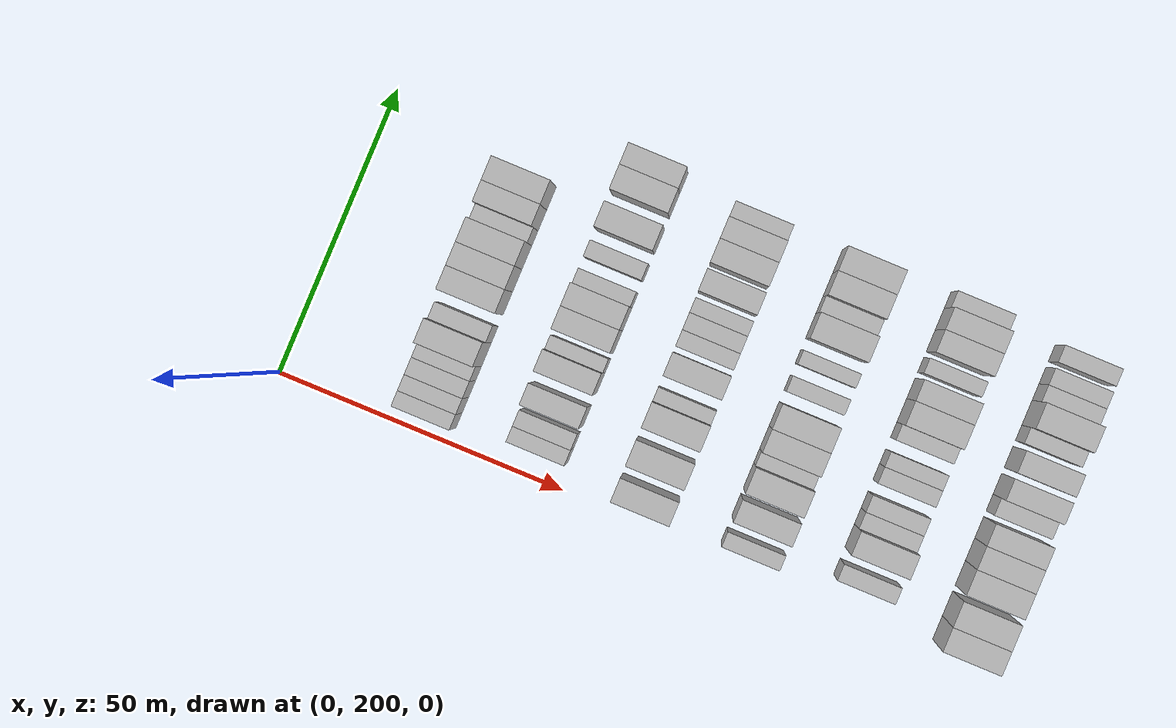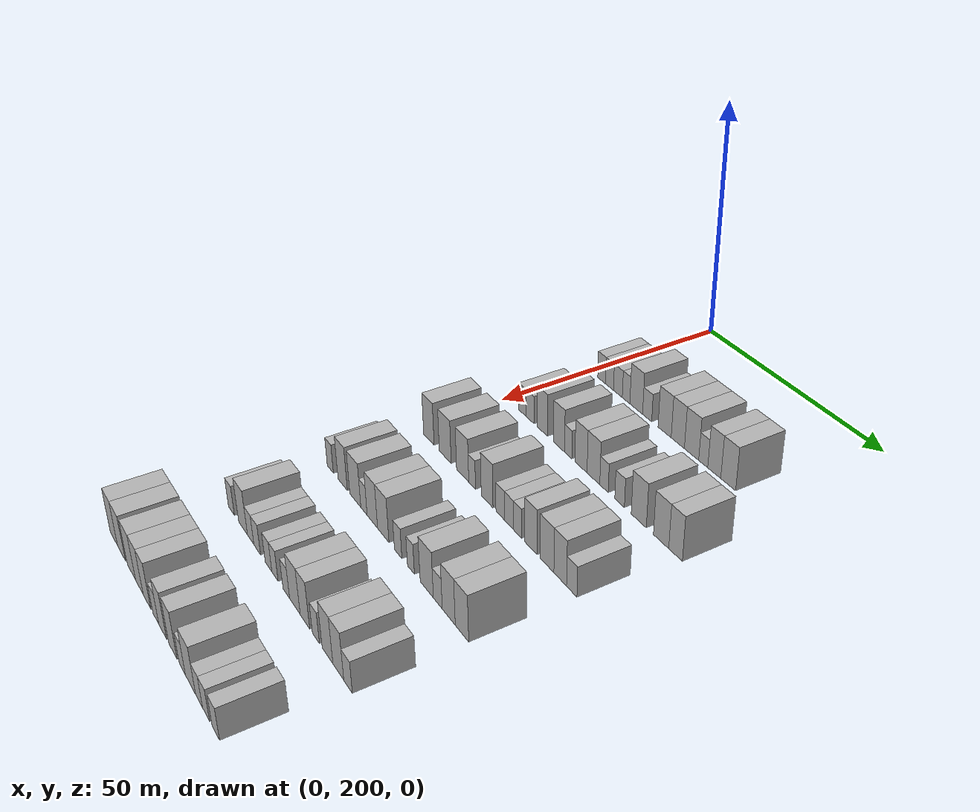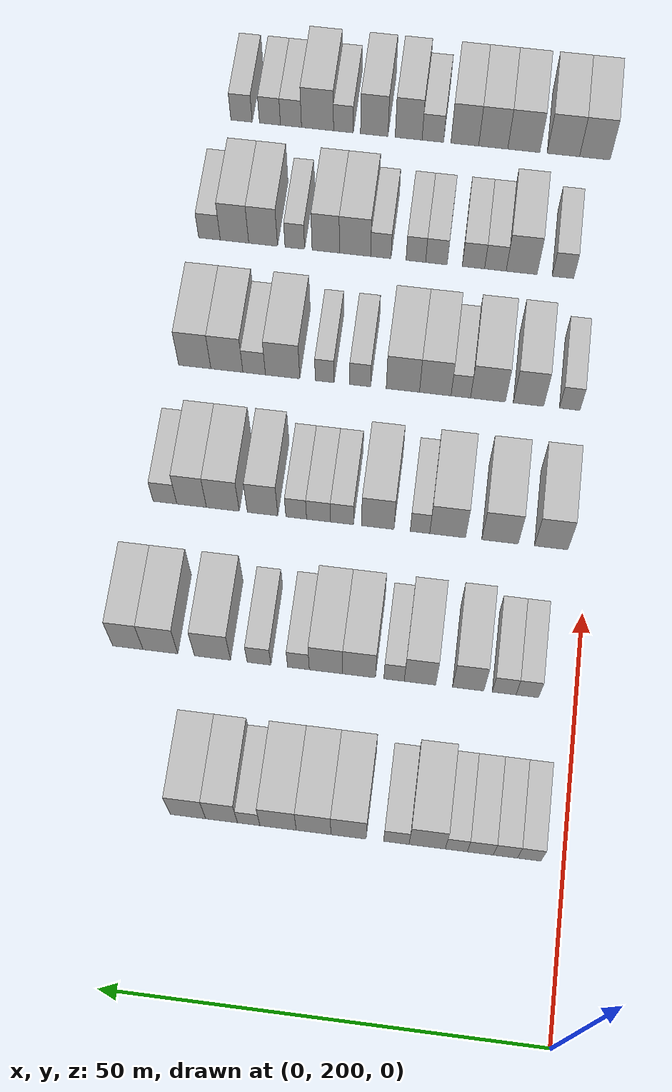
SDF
<sdf version="1.6">
 <world name="default">
  <model name="building_134">
   <static>1</static>
   <pose>25.0000 203.9932 0 0.000000 0.000000 0.000000</pose>
   <link name="link">
    <pose>0 0 3.00 0 0 0</pose>
    <collision name="collision"><geometry><box><size>10.0000 2.6758 6.0000</size></box></geometry></collision>
    <visual name="visual">
     <cast_shadows>0</cast_shadows>
     <geometry><box><size>10.0000 2.6758 6.0000</size></box></geometry>
     <material>
      <script>
       <uri>model://HANNAS_wall/materials/scripts</uri>
       <uri>model://HANNAS_wall/materials/textures</uri>
       <name>vrc/HANNAS_wall</name>
      </script>
     </material>
    </visual>
   </link>
  </model>
  <model name="building_135">
   <static>1</static>
   <pose>25.0000 206.7074 0 0.000000 0.000000 0.000000</pose>
   <link name="link">
    <pose>0 0 3.00 0 0 0</pose>
    <collision name="collision"><geometry><box><size>10.0000 2.7527 6.0000</size></box></geometry></collision>
    <visual name="visual">
     <cast_shadows>0</cast_shadows>
     <geometry><box><size>10.0000 2.7527 6.0000</size></box></geometry>
     <material>
      <script>
       <uri>model://HANNAS_wall/materials/scripts</uri>
       <uri>model://HANNAS_wall/materials/textures</uri>
       <name>vrc/HANNAS_wall</name>
      </script>
     </material>
    </visual>
   </link>
  </model>
  <model name="building_136">
   <static>1</static>
   <pose>25.0000 209.5710 0 0.000000 0.000000 0.000000</pose>
   <link name="link">
    <pose>0 0 3.00 0 0 0</pose>
    <collision name="collision"><geometry><box><size>10.0000 2.9745 6.0000</size></box></geometry></collision>
    <visual name="visual">
     <cast_shadows>0</cast_shadows>
     <geometry><box><size>10.0000 2.9745 6.0000</size></box></geometry>
     <material>
      <script>
       <uri>model://HANNAS_wall/materials/scripts</uri>
       <uri>model://HANNAS_wall/materials/textures</uri>
       <name>vrc/HANNAS_wall</name>
      </script>
     </material>
    </visual>
   </link>
  </model>
  <model name="building_137">
   <static>1</static>
   <pose>25.0000 212.3163 0 0.000000 0.000000 0.000000</pose>
   <link name="link">
    <pose>0 0 3.00 0 0 0</pose>
    <collision name="collision"><geometry><box><size>10.0000 2.5160 6.0000</size></box></geometry></collision>
    <visual name="visual">
     <cast_shadows>0</cast_shadows>
     <geometry><box><size>10.0000 2.5160 6.0000</size></box></geometry>
     <material>
      <script>
       <uri>model://HANNAS_wall/materials/scripts</uri>
       <uri>model://HANNAS_wall/materials/textures</uri>
       <name>vrc/HANNAS_wall</name>
      </script>
     </material>
    </visual>
   </link>
  </model>
  <model name="building_138">
   <static>1</static>
   <pose>25.0000 215.6465 0 0.000000 0.000000 0.000000</pose>
   <link name="link">
    <pose>0 0 4.50 0 0 0</pose>
    <collision name="collision"><geometry><box><size>10.0000 4.1445 9.0000</size></box></geometry></collision>
    <visual name="visual">
     <cast_shadows>0</cast_shadows>
     <geometry><box><size>10.0000 4.1445 9.0000</size></box></geometry>
     <material>
      <script>
       <uri>model://HANNAS_wall/materials/scripts</uri>
       <uri>model://HANNAS_wall/materials/textures</uri>
       <name>vrc/HANNAS_wall</name>
      </script>
     </material>
    </visual>
   </link>
  </model>
  <model name="building_139">
   <static>1</static>
   <pose>25.0000 219.1744 0 0.000000 0.000000 0.000000</pose>
   <link name="link">
    <pose>0 0 3.00 0 0 0</pose>
    <collision name="collision"><geometry><box><size>10.0000 2.9113 6.0000</size></box></geometry></collision>
    <visual name="visual">
     <cast_shadows>0</cast_shadows>
     <geometry><box><size>10.0000 2.9113 6.0000</size></box></geometry>
     <material>
      <script>
       <uri>model://HANNAS_wall/materials/scripts</uri>
       <uri>model://HANNAS_wall/materials/textures</uri>
       <name>vrc/HANNAS_wall</name>
      </script>
     </material>
    </visual>
   </link>
  </model>
  <model name="building_140">
   <static>1</static>
   <pose>25.0000 224.6553 0 0.000000 0.000000 0.000000</pose>
   <link name="link">
    <pose>0 0 4.50 0 0 0</pose>
    <collision name="collision"><geometry><box><size>10.0000 4.0504 9.0000</size></box></geometry></collision>
    <visual name="visual">
     <cast_shadows>0</cast_shadows>
     <geometry><box><size>10.0000 4.0504 9.0000</size></box></geometry>
     <material>
      <script>
       <uri>model://HANNAS_wall/materials/scripts</uri>
       <uri>model://HANNAS_wall/materials/textures</uri>
       <name>vrc/HANNAS_wall</name>
      </script>
     </material>
    </visual>
   </link>
  </model>
  <model name="building_141">
   <static>1</static>
   <pose>25.0000 228.6712 0 0.000000 0.000000 0.000000</pose>
   <link name="link">
    <pose>0 0 4.50 0 0 0</pose>
    <collision name="collision"><geometry><box><size>10.0000 3.9813 9.0000</size></box></geometry></collision>
    <visual name="visual">
     <cast_shadows>0</cast_shadows>
     <geometry><box><size>10.0000 3.9813 9.0000</size></box></geometry>
     <material>
      <script>
       <uri>model://HANNAS_wall/materials/scripts</uri>
       <uri>model://HANNAS_wall/materials/textures</uri>
       <name>vrc/HANNAS_wall</name>
      </script>
     </material>
    </visual>
   </link>
  </model>
  <model name="building_142">
   <static>1</static>
   <pose>25.0000 232.7609 0 0.000000 0.000000 0.000000</pose>
   <link name="link">
    <pose>0 0 4.50 0 0 0</pose>
    <collision name="collision"><geometry><box><size>10.0000 4.1981 9.0000</size></box></geometry></collision>
    <visual name="visual">
     <cast_shadows>0</cast_shadows>
     <geometry><box><size>10.0000 4.1981 9.0000</size></box></geometry>
     <material>
      <script>
       <uri>model://HANNAS_wall/materials/scripts</uri>
       <uri>model://HANNAS_wall/materials/textures</uri>
       <name>vrc/HANNAS_wall</name>
      </script>
     </material>
    </visual>
   </link>
  </model>
  <model name="building_143">
   <static>1</static>
   <pose>25.0000 236.1586 0 0.000000 0.000000 0.000000</pose>
   <link name="link">
    <pose>0 0 3.00 0 0 0</pose>
    <collision name="collision"><geometry><box><size>10.0000 2.5973 6.0000</size></box></geometry></collision>
    <visual name="visual">
     <cast_shadows>0</cast_shadows>
     <geometry><box><size>10.0000 2.5973 6.0000</size></box></geometry>
     <material>
      <script>
       <uri>model://HANNAS_wall/materials/scripts</uri>
       <uri>model://HANNAS_wall/materials/textures</uri>
       <name>vrc/HANNAS_wall</name>
      </script>
     </material>
    </visual>
   </link>
  </model>
  <model name="building_144">
   <static>1</static>
   <pose>25.0000 239.2907 0 0.000000 0.000000 0.000000</pose>
   <link name="link">
    <pose>0 0 4.50 0 0 0</pose>
    <collision name="collision"><geometry><box><size>10.0000 3.6669 9.0000</size></box></geometry></collision>
    <visual name="visual">
     <cast_shadows>0</cast_shadows>
     <geometry><box><size>10.0000 3.6669 9.0000</size></box></geometry>
     <material>
      <script>
       <uri>model://HANNAS_wall/materials/scripts</uri>
       <uri>model://HANNAS_wall/materials/textures</uri>
       <name>vrc/HANNAS_wall</name>
      </script>
     </material>
    </visual>
   </link>
  </model>
  <model name="building_145">
   <static>1</static>
   <pose>25.0000 243.1764 0 0.000000 0.000000 0.000000</pose>
   <link name="link">
    <pose>0 0 4.50 0 0 0</pose>
    <collision name="collision"><geometry><box><size>10.0000 4.1045 9.0000</size></box></geometry></collision>
    <visual name="visual">
     <cast_shadows>0</cast_shadows>
     <geometry><box><size>10.0000 4.1045 9.0000</size></box></geometry>
     <material>
      <script>
       <uri>model://HANNAS_wall/materials/scripts</uri>
       <uri>model://HANNAS_wall/materials/textures</uri>
       <name>vrc/HANNAS_wall</name>
      </script>
     </material>
    </visual>
   </link>
  </model>
  <model name="building_305">
   <static>1</static>
   <pose>44.0000 205.7767 0 0.000000 0.000000 0.000000</pose>
   <link name="link">
    <pose>0 0 3.00 0 0 0</pose>
    <collision name="collision"><geometry><box><size>10.0000 2.6656 6.0000</size></box></geometry></collision>
    <visual name="visual">
     <cast_shadows>0</cast_shadows>
     <geometry><box><size>10.0000 2.6656 6.0000</size></box></geometry>
     <material>
      <script>
       <uri>model://HANNAS_wall/materials/scripts</uri>
       <uri>model://HANNAS_wall/materials/textures</uri>
       <name>vrc/HANNAS_wall</name>
      </script>
     </material>
    </visual>
   </link>
  </model>
  <model name="building_306">
   <static>1</static>
   <pose>44.0000 208.5176 0 0.000000 0.000000 0.000000</pose>
   <link name="link">
    <pose>0 0 3.00 0 0 0</pose>
    <collision name="collision"><geometry><box><size>10.0000 2.8162 6.0000</size></box></geometry></collision>
    <visual name="visual">
     <cast_shadows>0</cast_shadows>
     <geometry><box><size>10.0000 2.8162 6.0000</size></box></geometry>
     <material>
      <script>
       <uri>model://HANNAS_wall/materials/scripts</uri>
       <uri>model://HANNAS_wall/materials/textures</uri>
       <name>vrc/HANNAS_wall</name>
      </script>
     </material>
    </visual>
   </link>
  </model>
  <model name="building_307">
   <static>1</static>
   <pose>44.0000 212.7822 0 0.000000 0.000000 0.000000</pose>
   <link name="link">
    <pose>0 0 4.50 0 0 0</pose>
    <collision name="collision"><geometry><box><size>10.0000 3.7130 9.0000</size></box></geometry></collision>
    <visual name="visual">
     <cast_shadows>0</cast_shadows>
     <geometry><box><size>10.0000 3.7130 9.0000</size></box></geometry>
     <material>
      <script>
       <uri>model://HANNAS_wall/materials/scripts</uri>
       <uri>model://HANNAS_wall/materials/textures</uri>
       <name>vrc/HANNAS_wall</name>
      </script>
     </material>
    </visual>
   </link>
  </model>
  <model name="building_308">
   <static>1</static>
   <pose>44.0000 218.5123 0 0.000000 0.000000 0.000000</pose>
   <link name="link">
    <pose>0 0 4.50 0 0 0</pose>
    <collision name="collision"><geometry><box><size>10.0000 3.7473 9.0000</size></box></geometry></collision>
    <visual name="visual">
     <cast_shadows>0</cast_shadows>
     <geometry><box><size>10.0000 3.7473 9.0000</size></box></geometry>
     <material>
      <script>
       <uri>model://HANNAS_wall/materials/scripts</uri>
       <uri>model://HANNAS_wall/materials/textures</uri>
       <name>vrc/HANNAS_wall</name>
      </script>
     </material>
    </visual>
   </link>
  </model>
  <model name="building_309">
   <static>1</static>
   <pose>44.0000 221.5993 0 0.000000 0.000000 0.000000</pose>
   <link name="link">
    <pose>0 0 3.00 0 0 0</pose>
    <collision name="collision"><geometry><box><size>10.0000 2.4266 6.0000</size></box></geometry></collision>
    <visual name="visual">
     <cast_shadows>0</cast_shadows>
     <geometry><box><size>10.0000 2.4266 6.0000</size></box></geometry>
     <material>
      <script>
       <uri>model://HANNAS_wall/materials/scripts</uri>
       <uri>model://HANNAS_wall/materials/textures</uri>
       <name>vrc/HANNAS_wall</name>
      </script>
     </material>
    </visual>
   </link>
  </model>
  <model name="building_310">
   <static>1</static>
   <pose>44.0000 225.7663 0 0.000000 0.000000 0.000000</pose>
   <link name="link">
    <pose>0 0 4.50 0 0 0</pose>
    <collision name="collision"><geometry><box><size>10.0000 3.9075 9.0000</size></box></geometry></collision>
    <visual name="visual">
     <cast_shadows>0</cast_shadows>
     <geometry><box><size>10.0000 3.9075 9.0000</size></box></geometry>
     <material>
      <script>
       <uri>model://HANNAS_wall/materials/scripts</uri>
       <uri>model://HANNAS_wall/materials/textures</uri>
       <name>vrc/HANNAS_wall</name>
      </script>
     </material>
    </visual>
   </link>
  </model>
  <model name="building_311">
   <static>1</static>
   <pose>44.0000 229.7181 0 0.000000 0.000000 0.000000</pose>
   <link name="link">
    <pose>0 0 4.50 0 0 0</pose>
    <collision name="collision"><geometry><box><size>10.0000 3.9959 9.0000</size></box></geometry></collision>
    <visual name="visual">
     <cast_shadows>0</cast_shadows>
     <geometry><box><size>10.0000 3.9959 9.0000</size></box></geometry>
     <material>
      <script>
       <uri>model://HANNAS_wall/materials/scripts</uri>
       <uri>model://HANNAS_wall/materials/textures</uri>
       <name>vrc/HANNAS_wall</name>
      </script>
     </material>
    </visual>
   </link>
  </model>
  <model name="building_312">
   <static>1</static>
   <pose>44.0000 233.0154 0 0.000000 0.000000 0.000000</pose>
   <link name="link">
    <pose>0 0 3.00 0 0 0</pose>
    <collision name="collision"><geometry><box><size>10.0000 2.5988 6.0000</size></box></geometry></collision>
    <visual name="visual">
     <cast_shadows>0</cast_shadows>
     <geometry><box><size>10.0000 2.5988 6.0000</size></box></geometry>
     <material>
      <script>
       <uri>model://HANNAS_wall/materials/scripts</uri>
       <uri>model://HANNAS_wall/materials/textures</uri>
       <name>vrc/HANNAS_wall</name>
      </script>
     </material>
    </visual>
   </link>
  </model>
  <model name="building_313">
   <static>1</static>
   <pose>44.0000 237.7409 0 0.000000 0.000000 0.000000</pose>
   <link name="link">
    <pose>0 0 3.00 0 0 0</pose>
    <collision name="collision"><geometry><box><size>10.0000 2.8521 6.0000</size></box></geometry></collision>
    <visual name="visual">
     <cast_shadows>0</cast_shadows>
     <geometry><box><size>10.0000 2.8521 6.0000</size></box></geometry>
     <material>
      <script>
       <uri>model://HANNAS_wall/materials/scripts</uri>
       <uri>model://HANNAS_wall/materials/textures</uri>
       <name>vrc/HANNAS_wall</name>
      </script>
     </material>
    </visual>
   </link>
  </model>
  <model name="building_314">
   <static>1</static>
   <pose>44.0000 243.3391 0 0.000000 0.000000 0.000000</pose>
   <link name="link">
    <pose>0 0 4.50 0 0 0</pose>
    <collision name="collision"><geometry><box><size>10.0000 4.3443 9.0000</size></box></geometry></collision>
    <visual name="visual">
     <cast_shadows>0</cast_shadows>
     <geometry><box><size>10.0000 4.3443 9.0000</size></box></geometry>
     <material>
      <script>
       <uri>model://HANNAS_wall/materials/scripts</uri>
       <uri>model://HANNAS_wall/materials/textures</uri>
       <name>vrc/HANNAS_wall</name>
      </script>
     </material>
    </visual>
   </link>
  </model>
  <model name="building_315">
   <static>1</static>
   <pose>44.0000 249.6149 0 0.000000 0.000000 0.000000</pose>
   <link name="link">
    <pose>0 0 4.50 0 0 0</pose>
    <collision name="collision"><geometry><box><size>10.0000 4.2073 9.0000</size></box></geometry></collision>
    <visual name="visual">
     <cast_shadows>0</cast_shadows>
     <geometry><box><size>10.0000 4.2073 9.0000</size></box></geometry>
     <material>
      <script>
       <uri>model://HANNAS_wall/materials/scripts</uri>
       <uri>model://HANNAS_wall/materials/textures</uri>
       <name>vrc/HANNAS_wall</name>
      </script>
     </material>
    </visual>
   </link>
  </model>
  <model name="building_316">
   <static>1</static>
   <pose>44.0000 253.5548 0 0.000000 0.000000 0.000000</pose>
   <link name="link">
    <pose>0 0 4.50 0 0 0</pose>
    <collision name="collision"><geometry><box><size>10.0000 3.6726 9.0000</size></box></geometry></collision>
    <visual name="visual">
     <cast_shadows>0</cast_shadows>
     <geometry><box><size>10.0000 3.6726 9.0000</size></box></geometry>
     <material>
      <script>
       <uri>model://HANNAS_wall/materials/scripts</uri>
       <uri>model://HANNAS_wall/materials/textures</uri>
       <name>vrc/HANNAS_wall</name>
      </script>
     </material>
    </visual>
   </link>
  </model>
  <model name="building_479">
   <static>1</static>
   <pose>63.0000 204.4105 0 0.000000 0.000000 0.000000</pose>
   <link name="link">
    <pose>0 0 4.50 0 0 0</pose>
    <collision name="collision"><geometry><box><size>10.0000 4.0880 9.0000</size></box></geometry></collision>
    <visual name="visual">
     <cast_shadows>0</cast_shadows>
     <geometry><box><size>10.0000 4.0880 9.0000</size></box></geometry>
     <material>
      <script>
       <uri>model://HANNAS_wall/materials/scripts</uri>
       <uri>model://HANNAS_wall/materials/textures</uri>
       <name>vrc/HANNAS_wall</name>
      </script>
     </material>
    </visual>
   </link>
  </model>
  <model name="building_480">
   <static>1</static>
   <pose>63.0000 210.6955 0 0.000000 0.000000 0.000000</pose>
   <link name="link">
    <pose>0 0 4.50 0 0 0</pose>
    <collision name="collision"><geometry><box><size>10.0000 4.4819 9.0000</size></box></geometry></collision>
    <visual name="visual">
     <cast_shadows>0</cast_shadows>
     <geometry><box><size>10.0000 4.4819 9.0000</size></box></geometry>
     <material>
      <script>
       <uri>model://HANNAS_wall/materials/scripts</uri>
       <uri>model://HANNAS_wall/materials/textures</uri>
       <name>vrc/HANNAS_wall</name>
      </script>
     </material>
    </visual>
   </link>
  </model>
  <model name="building_481">
   <static>1</static>
   <pose>63.0000 217.1444 0 0.000000 0.000000 0.000000</pose>
   <link name="link">
    <pose>0 0 4.50 0 0 0</pose>
    <collision name="collision"><geometry><box><size>10.0000 4.4159 9.0000</size></box></geometry></collision>
    <visual name="visual">
     <cast_shadows>0</cast_shadows>
     <geometry><box><size>10.0000 4.4159 9.0000</size></box></geometry>
     <material>
      <script>
       <uri>model://HANNAS_wall/materials/scripts</uri>
       <uri>model://HANNAS_wall/materials/textures</uri>
       <name>vrc/HANNAS_wall</name>
      </script>
     </material>
    </visual>
   </link>
  </model>
  <model name="building_482">
   <static>1</static>
   <pose>63.0000 220.5580 0 0.000000 0.000000 0.000000</pose>
   <link name="link">
    <pose>0 0 3.00 0 0 0</pose>
    <collision name="collision"><geometry><box><size>10.0000 2.4114 6.0000</size></box></geometry></collision>
    <visual name="visual">
     <cast_shadows>0</cast_shadows>
     <geometry><box><size>10.0000 2.4114 6.0000</size></box></geometry>
     <material>
      <script>
       <uri>model://HANNAS_wall/materials/scripts</uri>
       <uri>model://HANNAS_wall/materials/textures</uri>
       <name>vrc/HANNAS_wall</name>
      </script>
     </material>
    </visual>
   </link>
  </model>
  <model name="building_483">
   <static>1</static>
   <pose>63.0000 225.7758 0 0.000000 0.000000 0.000000</pose>
   <link name="link">
    <pose>0 0 4.50 0 0 0</pose>
    <collision name="collision"><geometry><box><size>10.0000 4.0241 9.0000</size></box></geometry></collision>
    <visual name="visual">
     <cast_shadows>0</cast_shadows>
     <geometry><box><size>10.0000 4.0241 9.0000</size></box></geometry>
     <material>
      <script>
       <uri>model://HANNAS_wall/materials/scripts</uri>
       <uri>model://HANNAS_wall/materials/textures</uri>
       <name>vrc/HANNAS_wall</name>
      </script>
     </material>
    </visual>
   </link>
  </model>
  <model name="building_484">
   <static>1</static>
   <pose>63.0000 230.2098 0 0.000000 0.000000 0.000000</pose>
   <link name="link">
    <pose>0 0 3.00 0 0 0</pose>
    <collision name="collision"><geometry><box><size>10.0000 2.8437 6.0000</size></box></geometry></collision>
    <visual name="visual">
     <cast_shadows>0</cast_shadows>
     <geometry><box><size>10.0000 2.8437 6.0000</size></box></geometry>
     <material>
      <script>
       <uri>model://HANNAS_wall/materials/scripts</uri>
       <uri>model://HANNAS_wall/materials/textures</uri>
       <name>vrc/HANNAS_wall</name>
      </script>
     </material>
    </visual>
   </link>
  </model>
  <model name="building_485">
   <static>1</static>
   <pose>63.0000 233.1184 0 0.000000 0.000000 0.000000</pose>
   <link name="link">
    <pose>0 0 3.00 0 0 0</pose>
    <collision name="collision"><geometry><box><size>10.0000 2.9736 6.0000</size></box></geometry></collision>
    <visual name="visual">
     <cast_shadows>0</cast_shadows>
     <geometry><box><size>10.0000 2.9736 6.0000</size></box></geometry>
     <material>
      <script>
       <uri>model://HANNAS_wall/materials/scripts</uri>
       <uri>model://HANNAS_wall/materials/textures</uri>
       <name>vrc/HANNAS_wall</name>
      </script>
     </material>
    </visual>
   </link>
  </model>
  <model name="building_486">
   <static>1</static>
   <pose>63.0000 235.8900 0 0.000000 0.000000 0.000000</pose>
   <link name="link">
    <pose>0 0 3.00 0 0 0</pose>
    <collision name="collision"><geometry><box><size>10.0000 2.5695 6.0000</size></box></geometry></collision>
    <visual name="visual">
     <cast_shadows>0</cast_shadows>
     <geometry><box><size>10.0000 2.5695 6.0000</size></box></geometry>
     <material>
      <script>
       <uri>model://HANNAS_wall/materials/scripts</uri>
       <uri>model://HANNAS_wall/materials/textures</uri>
       <name>vrc/HANNAS_wall</name>
      </script>
     </material>
    </visual>
   </link>
  </model>
  <model name="building_487">
   <static>1</static>
   <pose>63.0000 240.0777 0 0.000000 0.000000 0.000000</pose>
   <link name="link">
    <pose>0 0 4.50 0 0 0</pose>
    <collision name="collision"><geometry><box><size>10.0000 3.8059 9.0000</size></box></geometry></collision>
    <visual name="visual">
     <cast_shadows>0</cast_shadows>
     <geometry><box><size>10.0000 3.8059 9.0000</size></box></geometry>
     <material>
      <script>
       <uri>model://HANNAS_wall/materials/scripts</uri>
       <uri>model://HANNAS_wall/materials/textures</uri>
       <name>vrc/HANNAS_wall</name>
      </script>
     </material>
    </visual>
   </link>
  </model>
  <model name="building_488">
   <static>1</static>
   <pose>63.0000 245.0342 0 0.000000 0.000000 0.000000</pose>
   <link name="link">
    <pose>0 0 4.50 0 0 0</pose>
    <collision name="collision"><geometry><box><size>10.0000 4.1071 9.0000</size></box></geometry></collision>
    <visual name="visual">
     <cast_shadows>0</cast_shadows>
     <geometry><box><size>10.0000 4.1071 9.0000</size></box></geometry>
     <material>
      <script>
       <uri>model://HANNAS_wall/materials/scripts</uri>
       <uri>model://HANNAS_wall/materials/textures</uri>
       <name>vrc/HANNAS_wall</name>
      </script>
     </material>
    </visual>
   </link>
  </model>
  <model name="building_489">
   <static>1</static>
   <pose>63.0000 248.9422 0 0.000000 0.000000 0.000000</pose>
   <link name="link">
    <pose>0 0 4.50 0 0 0</pose>
    <collision name="collision"><geometry><box><size>10.0000 3.7089 9.0000</size></box></geometry></collision>
    <visual name="visual">
     <cast_shadows>0</cast_shadows>
     <geometry><box><size>10.0000 3.7089 9.0000</size></box></geometry>
     <material>
      <script>
       <uri>model://HANNAS_wall/materials/scripts</uri>
       <uri>model://HANNAS_wall/materials/textures</uri>
       <name>vrc/HANNAS_wall</name>
      </script>
     </material>
    </visual>
   </link>
  </model>
  <model name="building_490">
   <static>1</static>
   <pose>63.0000 252.2811 0 0.000000 0.000000 0.000000</pose>
   <link name="link">
    <pose>0 0 3.00 0 0 0</pose>
    <collision name="collision"><geometry><box><size>10.0000 2.9689 6.0000</size></box></geometry></collision>
    <visual name="visual">
     <cast_shadows>0</cast_shadows>
     <geometry><box><size>10.0000 2.9689 6.0000</size></box></geometry>
     <material>
      <script>
       <uri>model://HANNAS_wall/materials/scripts</uri>
       <uri>model://HANNAS_wall/materials/textures</uri>
       <name>vrc/HANNAS_wall</name>
      </script>
     </material>
    </visual>
   </link>
  </model>
  <model name="building_662">
   <static>1</static>
   <pose>82.0000 203.5092 0 0.000000 0.000000 0.000000</pose>
   <link name="link">
    <pose>0 0 3.00 0 0 0</pose>
    <collision name="collision"><geometry><box><size>10.0000 2.6144 6.0000</size></box></geometry></collision>
    <visual name="visual">
     <cast_shadows>0</cast_shadows>
     <geometry><box><size>10.0000 2.6144 6.0000</size></box></geometry>
     <material>
      <script>
       <uri>model://HANNAS_wall/materials/scripts</uri>
       <uri>model://HANNAS_wall/materials/textures</uri>
       <name>vrc/HANNAS_wall</name>
      </script>
     </material>
    </visual>
   </link>
  </model>
  <model name="building_663">
   <static>1</static>
   <pose>82.0000 208.7535 0 0.000000 0.000000 0.000000</pose>
   <link name="link">
    <pose>0 0 4.50 0 0 0</pose>
    <collision name="collision"><geometry><box><size>10.0000 3.8741 9.0000</size></box></geometry></collision>
    <visual name="visual">
     <cast_shadows>0</cast_shadows>
     <geometry><box><size>10.0000 3.8741 9.0000</size></box></geometry>
     <material>
      <script>
       <uri>model://HANNAS_wall/materials/scripts</uri>
       <uri>model://HANNAS_wall/materials/textures</uri>
       <name>vrc/HANNAS_wall</name>
      </script>
     </material>
    </visual>
   </link>
  </model>
  <model name="building_664">
   <static>1</static>
   <pose>82.0000 213.9165 0 0.000000 0.000000 0.000000</pose>
   <link name="link">
    <pose>0 0 4.50 0 0 0</pose>
    <collision name="collision"><geometry><box><size>10.0000 4.4519 9.0000</size></box></geometry></collision>
    <visual name="visual">
     <cast_shadows>0</cast_shadows>
     <geometry><box><size>10.0000 4.4519 9.0000</size></box></geometry>
     <material>
      <script>
       <uri>model://HANNAS_wall/materials/scripts</uri>
       <uri>model://HANNAS_wall/materials/textures</uri>
       <name>vrc/HANNAS_wall</name>
      </script>
     </material>
    </visual>
   </link>
  </model>
  <model name="building_665">
   <static>1</static>
   <pose>82.0000 217.3865 0 0.000000 0.000000 0.000000</pose>
   <link name="link">
    <pose>0 0 3.00 0 0 0</pose>
    <collision name="collision"><geometry><box><size>10.0000 2.4881 6.0000</size></box></geometry></collision>
    <visual name="visual">
     <cast_shadows>0</cast_shadows>
     <geometry><box><size>10.0000 2.4881 6.0000</size></box></geometry>
     <material>
      <script>
       <uri>model://HANNAS_wall/materials/scripts</uri>
       <uri>model://HANNAS_wall/materials/textures</uri>
       <name>vrc/HANNAS_wall</name>
      </script>
     </material>
    </visual>
   </link>
  </model>
  <model name="building_666">
   <static>1</static>
   <pose>82.0000 220.6441 0 0.000000 0.000000 0.000000</pose>
   <link name="link">
    <pose>0 0 4.50 0 0 0</pose>
    <collision name="collision"><geometry><box><size>10.0000 4.0270 9.0000</size></box></geometry></collision>
    <visual name="visual">
     <cast_shadows>0</cast_shadows>
     <geometry><box><size>10.0000 4.0270 9.0000</size></box></geometry>
     <material>
      <script>
       <uri>model://HANNAS_wall/materials/scripts</uri>
       <uri>model://HANNAS_wall/materials/textures</uri>
       <name>vrc/HANNAS_wall</name>
      </script>
     </material>
    </visual>
   </link>
  </model>
  <model name="building_667">
   <static>1</static>
   <pose>82.0000 224.7932 0 0.000000 0.000000 0.000000</pose>
   <link name="link">
    <pose>0 0 4.50 0 0 0</pose>
    <collision name="collision"><geometry><box><size>10.0000 4.2712 9.0000</size></box></geometry></collision>
    <visual name="visual">
     <cast_shadows>0</cast_shadows>
     <geometry><box><size>10.0000 4.2712 9.0000</size></box></geometry>
     <material>
      <script>
       <uri>model://HANNAS_wall/materials/scripts</uri>
       <uri>model://HANNAS_wall/materials/textures</uri>
       <name>vrc/HANNAS_wall</name>
      </script>
     </material>
    </visual>
   </link>
  </model>
  <model name="building_668">
   <static>1</static>
   <pose>82.0000 230.2750 0 0.000000 0.000000 0.000000</pose>
   <link name="link">
    <pose>0 0 3.00 0 0 0</pose>
    <collision name="collision"><geometry><box><size>10.0000 2.6922 6.0000</size></box></geometry></collision>
    <visual name="visual">
     <cast_shadows>0</cast_shadows>
     <geometry><box><size>10.0000 2.6922 6.0000</size></box></geometry>
     <material>
      <script>
       <uri>model://HANNAS_wall/materials/scripts</uri>
       <uri>model://HANNAS_wall/materials/textures</uri>
       <name>vrc/HANNAS_wall</name>
      </script>
     </material>
    </visual>
   </link>
  </model>
  <model name="building_669">
   <static>1</static>
   <pose>82.0000 234.8300 0 0.000000 0.000000 0.000000</pose>
   <link name="link">
    <pose>0 0 3.00 0 0 0</pose>
    <collision name="collision"><geometry><box><size>10.0000 2.4178 6.0000</size></box></geometry></collision>
    <visual name="visual">
     <cast_shadows>0</cast_shadows>
     <geometry><box><size>10.0000 2.4178 6.0000</size></box></geometry>
     <material>
      <script>
       <uri>model://HANNAS_wall/materials/scripts</uri>
       <uri>model://HANNAS_wall/materials/textures</uri>
       <name>vrc/HANNAS_wall</name>
      </script>
     </material>
    </visual>
   </link>
  </model>
  <model name="building_670">
   <static>1</static>
   <pose>82.0000 240.2549 0 0.000000 0.000000 0.000000</pose>
   <link name="link">
    <pose>0 0 4.50 0 0 0</pose>
    <collision name="collision"><geometry><box><size>10.0000 4.4321 9.0000</size></box></geometry></collision>
    <visual name="visual">
     <cast_shadows>0</cast_shadows>
     <geometry><box><size>10.0000 4.4321 9.0000</size></box></geometry>
     <material>
      <script>
       <uri>model://HANNAS_wall/materials/scripts</uri>
       <uri>model://HANNAS_wall/materials/textures</uri>
       <name>vrc/HANNAS_wall</name>
      </script>
     </material>
    </visual>
   </link>
  </model>
  <model name="building_671">
   <static>1</static>
   <pose>82.0000 243.9283 0 0.000000 0.000000 0.000000</pose>
   <link name="link">
    <pose>0 0 3.00 0 0 0</pose>
    <collision name="collision"><geometry><box><size>10.0000 2.9148 6.0000</size></box></geometry></collision>
    <visual name="visual">
     <cast_shadows>0</cast_shadows>
     <geometry><box><size>10.0000 2.9148 6.0000</size></box></geometry>
     <material>
      <script>
       <uri>model://HANNAS_wall/materials/scripts</uri>
       <uri>model://HANNAS_wall/materials/textures</uri>
       <name>vrc/HANNAS_wall</name>
      </script>
     </material>
    </visual>
   </link>
  </model>
  <model name="building_672">
   <static>1</static>
   <pose>82.0000 247.4600 0 0.000000 0.000000 0.000000</pose>
   <link name="link">
    <pose>0 0 4.50 0 0 0</pose>
    <collision name="collision"><geometry><box><size>10.0000 4.1488 9.0000</size></box></geometry></collision>
    <visual name="visual">
     <cast_shadows>0</cast_shadows>
     <geometry><box><size>10.0000 4.1488 9.0000</size></box></geometry>
     <material>
      <script>
       <uri>model://HANNAS_wall/materials/scripts</uri>
       <uri>model://HANNAS_wall/materials/textures</uri>
       <name>vrc/HANNAS_wall</name>
      </script>
     </material>
    </visual>
   </link>
  </model>
  <model name="building_673">
   <static>1</static>
   <pose>82.0000 251.6200 0 0.000000 0.000000 0.000000</pose>
   <link name="link">
    <pose>0 0 4.50 0 0 0</pose>
    <collision name="collision"><geometry><box><size>10.0000 4.1712 9.0000</size></box></geometry></collision>
    <visual name="visual">
     <cast_shadows>0</cast_shadows>
     <geometry><box><size>10.0000 4.1712 9.0000</size></box></geometry>
     <material>
      <script>
       <uri>model://HANNAS_wall/materials/scripts</uri>
       <uri>model://HANNAS_wall/materials/textures</uri>
       <name>vrc/HANNAS_wall</name>
      </script>
     </material>
    </visual>
   </link>
  </model>
  <model name="building_829">
   <static>1</static>
   <pose>101.0000 205.7674 0 0.000000 0.000000 0.000000</pose>
   <link name="link">
    <pose>0 0 3.00 0 0 0</pose>
    <collision name="collision"><geometry><box><size>10.0000 2.8294 6.0000</size></box></geometry></collision>
    <visual name="visual">
     <cast_shadows>0</cast_shadows>
     <geometry><box><size>10.0000 2.8294 6.0000</size></box></geometry>
     <material>
      <script>
       <uri>model://HANNAS_wall/materials/scripts</uri>
       <uri>model://HANNAS_wall/materials/textures</uri>
       <name>vrc/HANNAS_wall</name>
      </script>
     </material>
    </visual>
   </link>
  </model>
  <model name="building_830">
   <static>1</static>
   <pose>101.0000 211.2204 0 0.000000 0.000000 0.000000</pose>
   <link name="link">
    <pose>0 0 4.50 0 0 0</pose>
    <collision name="collision"><geometry><box><size>10.0000 4.0766 9.0000</size></box></geometry></collision>
    <visual name="visual">
     <cast_shadows>0</cast_shadows>
     <geometry><box><size>10.0000 4.0766 9.0000</size></box></geometry>
     <material>
      <script>
       <uri>model://HANNAS_wall/materials/scripts</uri>
       <uri>model://HANNAS_wall/materials/textures</uri>
       <name>vrc/HANNAS_wall</name>
      </script>
     </material>
    </visual>
   </link>
  </model>
  <model name="building_831">
   <static>1</static>
   <pose>101.0000 214.6823 0 0.000000 0.000000 0.000000</pose>
   <link name="link">
    <pose>0 0 3.00 0 0 0</pose>
    <collision name="collision"><geometry><box><size>10.0000 2.8473 6.0000</size></box></geometry></collision>
    <visual name="visual">
     <cast_shadows>0</cast_shadows>
     <geometry><box><size>10.0000 2.8473 6.0000</size></box></geometry>
     <material>
      <script>
       <uri>model://HANNAS_wall/materials/scripts</uri>
       <uri>model://HANNAS_wall/materials/textures</uri>
       <name>vrc/HANNAS_wall</name>
      </script>
     </material>
    </visual>
   </link>
  </model>
  <model name="building_832">
   <static>1</static>
   <pose>101.0000 217.5791 0 0.000000 0.000000 0.000000</pose>
   <link name="link">
    <pose>0 0 3.00 0 0 0</pose>
    <collision name="collision"><geometry><box><size>10.0000 2.9463 6.0000</size></box></geometry></collision>
    <visual name="visual">
     <cast_shadows>0</cast_shadows>
     <geometry><box><size>10.0000 2.9463 6.0000</size></box></geometry>
     <material>
      <script>
       <uri>model://HANNAS_wall/materials/scripts</uri>
       <uri>model://HANNAS_wall/materials/textures</uri>
       <name>vrc/HANNAS_wall</name>
      </script>
     </material>
    </visual>
   </link>
  </model>
  <model name="building_833">
   <static>1</static>
   <pose>101.0000 222.4733 0 0.000000 0.000000 0.000000</pose>
   <link name="link">
    <pose>0 0 3.00 0 0 0</pose>
    <collision name="collision"><geometry><box><size>10.0000 2.8419 6.0000</size></box></geometry></collision>
    <visual name="visual">
     <cast_shadows>0</cast_shadows>
     <geometry><box><size>10.0000 2.8419 6.0000</size></box></geometry>
     <material>
      <script>
       <uri>model://HANNAS_wall/materials/scripts</uri>
       <uri>model://HANNAS_wall/materials/textures</uri>
       <name>vrc/HANNAS_wall</name>
      </script>
     </material>
    </visual>
   </link>
  </model>
  <model name="building_834">
   <static>1</static>
   <pose>101.0000 225.1943 0 0.000000 0.000000 0.000000</pose>
   <link name="link">
    <pose>0 0 3.00 0 0 0</pose>
    <collision name="collision"><geometry><box><size>10.0000 2.6001 6.0000</size></box></geometry></collision>
    <visual name="visual">
     <cast_shadows>0</cast_shadows>
     <geometry><box><size>10.0000 2.6001 6.0000</size></box></geometry>
     <material>
      <script>
       <uri>model://HANNAS_wall/materials/scripts</uri>
       <uri>model://HANNAS_wall/materials/textures</uri>
       <name>vrc/HANNAS_wall</name>
      </script>
     </material>
    </visual>
   </link>
  </model>
  <model name="building_835">
   <static>1</static>
   <pose>101.0000 229.8483 0 0.000000 0.000000 0.000000</pose>
   <link name="link">
    <pose>0 0 3.00 0 0 0</pose>
    <collision name="collision"><geometry><box><size>10.0000 2.7081 6.0000</size></box></geometry></collision>
    <visual name="visual">
     <cast_shadows>0</cast_shadows>
     <geometry><box><size>10.0000 2.7081 6.0000</size></box></geometry>
     <material>
      <script>
       <uri>model://HANNAS_wall/materials/scripts</uri>
       <uri>model://HANNAS_wall/materials/textures</uri>
       <name>vrc/HANNAS_wall</name>
      </script>
     </material>
    </visual>
   </link>
  </model>
  <model name="building_836">
   <static>1</static>
   <pose>101.0000 233.2816 0 0.000000 0.000000 0.000000</pose>
   <link name="link">
    <pose>0 0 4.50 0 0 0</pose>
    <collision name="collision"><geometry><box><size>10.0000 4.1585 9.0000</size></box></geometry></collision>
    <visual name="visual">
     <cast_shadows>0</cast_shadows>
     <geometry><box><size>10.0000 4.1585 9.0000</size></box></geometry>
     <material>
      <script>
       <uri>model://HANNAS_wall/materials/scripts</uri>
       <uri>model://HANNAS_wall/materials/textures</uri>
       <name>vrc/HANNAS_wall</name>
      </script>
     </material>
    </visual>
   </link>
  </model>
  <model name="building_837">
   <static>1</static>
   <pose>101.0000 237.1759 0 0.000000 0.000000 0.000000</pose>
   <link name="link">
    <pose>0 0 4.50 0 0 0</pose>
    <collision name="collision"><geometry><box><size>10.0000 3.6301 9.0000</size></box></geometry></collision>
    <visual name="visual">
     <cast_shadows>0</cast_shadows>
     <geometry><box><size>10.0000 3.6301 9.0000</size></box></geometry>
     <material>
      <script>
       <uri>model://HANNAS_wall/materials/scripts</uri>
       <uri>model://HANNAS_wall/materials/textures</uri>
       <name>vrc/HANNAS_wall</name>
      </script>
     </material>
    </visual>
   </link>
  </model>
  <model name="building_838">
   <static>1</static>
   <pose>101.0000 241.2977 0 0.000000 0.000000 0.000000</pose>
   <link name="link">
    <pose>0 0 3.00 0 0 0</pose>
    <collision name="collision"><geometry><box><size>10.0000 2.6134 6.0000</size></box></geometry></collision>
    <visual name="visual">
     <cast_shadows>0</cast_shadows>
     <geometry><box><size>10.0000 2.6134 6.0000</size></box></geometry>
     <material>
      <script>
       <uri>model://HANNAS_wall/materials/scripts</uri>
       <uri>model://HANNAS_wall/materials/textures</uri>
       <name>vrc/HANNAS_wall</name>
      </script>
     </material>
    </visual>
   </link>
  </model>
  <model name="building_839">
   <static>1</static>
   <pose>101.0000 245.5327 0 0.000000 0.000000 0.000000</pose>
   <link name="link">
    <pose>0 0 4.50 0 0 0</pose>
    <collision name="collision"><geometry><box><size>10.0000 3.8567 9.0000</size></box></geometry></collision>
    <visual name="visual">
     <cast_shadows>0</cast_shadows>
     <geometry><box><size>10.0000 3.8567 9.0000</size></box></geometry>
     <material>
      <script>
       <uri>model://HANNAS_wall/materials/scripts</uri>
       <uri>model://HANNAS_wall/materials/textures</uri>
       <name>vrc/HANNAS_wall</name>
      </script>
     </material>
    </visual>
   </link>
  </model>
  <model name="building_840">
   <static>1</static>
   <pose>101.0000 249.3632 0 0.000000 0.000000 0.000000</pose>
   <link name="link">
    <pose>0 0 4.50 0 0 0</pose>
    <collision name="collision"><geometry><box><size>10.0000 3.8044 9.0000</size></box></geometry></collision>
    <visual name="visual">
     <cast_shadows>0</cast_shadows>
     <geometry><box><size>10.0000 3.8044 9.0000</size></box></geometry>
     <material>
      <script>
       <uri>model://HANNAS_wall/materials/scripts</uri>
       <uri>model://HANNAS_wall/materials/textures</uri>
       <name>vrc/HANNAS_wall</name>
      </script>
     </material>
    </visual>
   </link>
  </model>
  <model name="building_841">
   <static>1</static>
   <pose>101.0000 252.7184 0 0.000000 0.000000 0.000000</pose>
   <link name="link">
    <pose>0 0 3.00 0 0 0</pose>
    <collision name="collision"><geometry><box><size>10.0000 2.9061 6.0000</size></box></geometry></collision>
    <visual name="visual">
     <cast_shadows>0</cast_shadows>
     <geometry><box><size>10.0000 2.9061 6.0000</size></box></geometry>
     <material>
      <script>
       <uri>model://HANNAS_wall/materials/scripts</uri>
       <uri>model://HANNAS_wall/materials/textures</uri>
       <name>vrc/HANNAS_wall</name>
      </script>
     </material>
    </visual>
   </link>
  </model>
  <model name="building_993">
   <static>1</static>
   <pose>120.0000 202.8425 0 0.000000 0.000000 0.000000</pose>
   <link name="link">
    <pose>0 0 4.50 0 0 0</pose>
    <collision name="collision"><geometry><box><size>10.0000 4.1461 9.0000</size></box></geometry></collision>
    <visual name="visual">
     <cast_shadows>0</cast_shadows>
     <geometry><box><size>10.0000 4.1461 9.0000</size></box></geometry>
     <material>
      <script>
       <uri>model://HANNAS_wall/materials/scripts</uri>
       <uri>model://HANNAS_wall/materials/textures</uri>
       <name>vrc/HANNAS_wall</name>
      </script>
     </material>
    </visual>
   </link>
  </model>
  <model name="building_994">
   <static>1</static>
   <pose>120.0000 207.1180 0 0.000000 0.000000 0.000000</pose>
   <link name="link">
    <pose>0 0 4.50 0 0 0</pose>
    <collision name="collision"><geometry><box><size>10.0000 4.4049 9.0000</size></box></geometry></collision>
    <visual name="visual">
     <cast_shadows>0</cast_shadows>
     <geometry><box><size>10.0000 4.4049 9.0000</size></box></geometry>
     <material>
      <script>
       <uri>model://HANNAS_wall/materials/scripts</uri>
       <uri>model://HANNAS_wall/materials/textures</uri>
       <name>vrc/HANNAS_wall</name>
      </script>
     </material>
    </visual>
   </link>
  </model>
  <model name="building_995">
   <static>1</static>
   <pose>120.0000 212.5049 0 0.000000 0.000000 0.000000</pose>
   <link name="link">
    <pose>0 0 4.50 0 0 0</pose>
    <collision name="collision"><geometry><box><size>10.0000 4.3689 9.0000</size></box></geometry></collision>
    <visual name="visual">
     <cast_shadows>0</cast_shadows>
     <geometry><box><size>10.0000 4.3689 9.0000</size></box></geometry>
     <material>
      <script>
       <uri>model://HANNAS_wall/materials/scripts</uri>
       <uri>model://HANNAS_wall/materials/textures</uri>
       <name>vrc/HANNAS_wall</name>
      </script>
     </material>
    </visual>
   </link>
  </model>
  <model name="building_996">
   <static>1</static>
   <pose>120.0000 216.6777 0 0.000000 0.000000 0.000000</pose>
   <link name="link">
    <pose>0 0 4.50 0 0 0</pose>
    <collision name="collision"><geometry><box><size>10.0000 3.9767 9.0000</size></box></geometry></collision>
    <visual name="visual">
     <cast_shadows>0</cast_shadows>
     <geometry><box><size>10.0000 3.9767 9.0000</size></box></geometry>
     <material>
      <script>
       <uri>model://HANNAS_wall/materials/scripts</uri>
       <uri>model://HANNAS_wall/materials/textures</uri>
       <name>vrc/HANNAS_wall</name>
      </script>
     </material>
    </visual>
   </link>
  </model>
  <model name="building_997">
   <static>1</static>
   <pose>120.0000 220.5641 0 0.000000 0.000000 0.000000</pose>
   <link name="link">
    <pose>0 0 4.50 0 0 0</pose>
    <collision name="collision"><geometry><box><size>10.0000 3.7960 9.0000</size></box></geometry></collision>
    <visual name="visual">
     <cast_shadows>0</cast_shadows>
     <geometry><box><size>10.0000 3.7960 9.0000</size></box></geometry>
     <material>
      <script>
       <uri>model://HANNAS_wall/materials/scripts</uri>
       <uri>model://HANNAS_wall/materials/textures</uri>
       <name>vrc/HANNAS_wall</name>
      </script>
     </material>
    </visual>
   </link>
  </model>
  <model name="building_998">
   <static>1</static>
   <pose>120.0000 224.9347 0 0.000000 0.000000 0.000000</pose>
   <link name="link">
    <pose>0 0 3.00 0 0 0</pose>
    <collision name="collision"><geometry><box><size>10.0000 2.9451 6.0000</size></box></geometry></collision>
    <visual name="visual">
     <cast_shadows>0</cast_shadows>
     <geometry><box><size>10.0000 2.9451 6.0000</size></box></geometry>
     <material>
      <script>
       <uri>model://HANNAS_wall/materials/scripts</uri>
       <uri>model://HANNAS_wall/materials/textures</uri>
       <name>vrc/HANNAS_wall</name>
      </script>
     </material>
    </visual>
   </link>
  </model>
  <model name="building_999">
   <static>1</static>
   <pose>120.0000 228.2491 0 0.000000 0.000000 0.000000</pose>
   <link name="link">
    <pose>0 0 4.50 0 0 0</pose>
    <collision name="collision"><geometry><box><size>10.0000 3.6839 9.0000</size></box></geometry></collision>
    <visual name="visual">
     <cast_shadows>0</cast_shadows>
     <geometry><box><size>10.0000 3.6839 9.0000</size></box></geometry>
     <material>
      <script>
       <uri>model://HANNAS_wall/materials/scripts</uri>
       <uri>model://HANNAS_wall/materials/textures</uri>
       <name>vrc/HANNAS_wall</name>
      </script>
     </material>
    </visual>
   </link>
  </model>
  <model name="building_1000">
   <static>1</static>
   <pose>120.0000 232.9753 0 0.000000 0.000000 0.000000</pose>
   <link name="link">
    <pose>0 0 4.50 0 0 0</pose>
    <collision name="collision"><geometry><box><size>10.0000 3.7683 9.0000</size></box></geometry></collision>
    <visual name="visual">
     <cast_shadows>0</cast_shadows>
     <geometry><box><size>10.0000 3.7683 9.0000</size></box></geometry>
     <material>
      <script>
       <uri>model://HANNAS_wall/materials/scripts</uri>
       <uri>model://HANNAS_wall/materials/textures</uri>
       <name>vrc/HANNAS_wall</name>
      </script>
     </material>
    </visual>
   </link>
  </model>
  <model name="building_1001">
   <static>1</static>
   <pose>120.0000 237.2155 0 0.000000 0.000000 0.000000</pose>
   <link name="link">
    <pose>0 0 3.00 0 0 0</pose>
    <collision name="collision"><geometry><box><size>10.0000 2.7121 6.0000</size></box></geometry></collision>
    <visual name="visual">
     <cast_shadows>0</cast_shadows>
     <geometry><box><size>10.0000 2.7121 6.0000</size></box></geometry>
     <material>
      <script>
       <uri>model://HANNAS_wall/materials/scripts</uri>
       <uri>model://HANNAS_wall/materials/textures</uri>
       <name>vrc/HANNAS_wall</name>
      </script>
     </material>
    </visual>
   </link>
  </model>
  <model name="building_1002">
   <static>1</static>
   <pose>120.0000 240.7810 0 0.000000 0.000000 0.000000</pose>
   <link name="link">
    <pose>0 0 4.50 0 0 0</pose>
    <collision name="collision"><geometry><box><size>10.0000 4.4189 9.0000</size></box></geometry></collision>
    <visual name="visual">
     <cast_shadows>0</cast_shadows>
     <geometry><box><size>10.0000 4.4189 9.0000</size></box></geometry>
     <material>
      <script>
       <uri>model://HANNAS_wall/materials/scripts</uri>
       <uri>model://HANNAS_wall/materials/textures</uri>
       <name>vrc/HANNAS_wall</name>
      </script>
     </material>
    </visual>
   </link>
  </model>
  <model name="building_1003">
   <static>1</static>
   <pose>120.0000 244.4443 0 0.000000 0.000000 0.000000</pose>
   <link name="link">
    <pose>0 0 3.00 0 0 0</pose>
    <collision name="collision"><geometry><box><size>10.0000 2.9078 6.0000</size></box></geometry></collision>
    <visual name="visual">
     <cast_shadows>0</cast_shadows>
     <geometry><box><size>10.0000 2.9078 6.0000</size></box></geometry>
     <material>
      <script>
       <uri>model://HANNAS_wall/materials/scripts</uri>
       <uri>model://HANNAS_wall/materials/textures</uri>
       <name>vrc/HANNAS_wall</name>
      </script>
     </material>
    </visual>
   </link>
  </model>
  <model name="building_1004">
   <static>1</static>
   <pose>120.0000 247.3477 0 0.000000 0.000000 0.000000</pose>
   <link name="link">
    <pose>0 0 3.00 0 0 0</pose>
    <collision name="collision"><geometry><box><size>10.0000 2.8989 6.0000</size></box></geometry></collision>
    <visual name="visual">
     <cast_shadows>0</cast_shadows>
     <geometry><box><size>10.0000 2.8989 6.0000</size></box></geometry>
     <material>
      <script>
       <uri>model://HANNAS_wall/materials/scripts</uri>
       <uri>model://HANNAS_wall/materials/textures</uri>
       <name>vrc/HANNAS_wall</name>
      </script>
     </material>
    </visual>
   </link>
  </model>
  <model name="building_1005">
   <static>1</static>
   <pose>120.0000 251.2746 0 0.000000 0.000000 0.000000</pose>
   <link name="link">
    <pose>0 0 3.00 0 0 0</pose>
    <collision name="collision"><geometry><box><size>10.0000 2.9550 6.0000</size></box></geometry></collision>
    <visual name="visual">
     <cast_shadows>0</cast_shadows>
     <geometry><box><size>10.0000 2.9550 6.0000</size></box></geometry>
     <material>
      <script>
       <uri>model://HANNAS_wall/materials/scripts</uri>
       <uri>model://HANNAS_wall/materials/textures</uri>
       <name>vrc/HANNAS_wall</name>
      </script>
     </material>
    </visual>
   </link>
  </model>
 </world>
</sdf>
